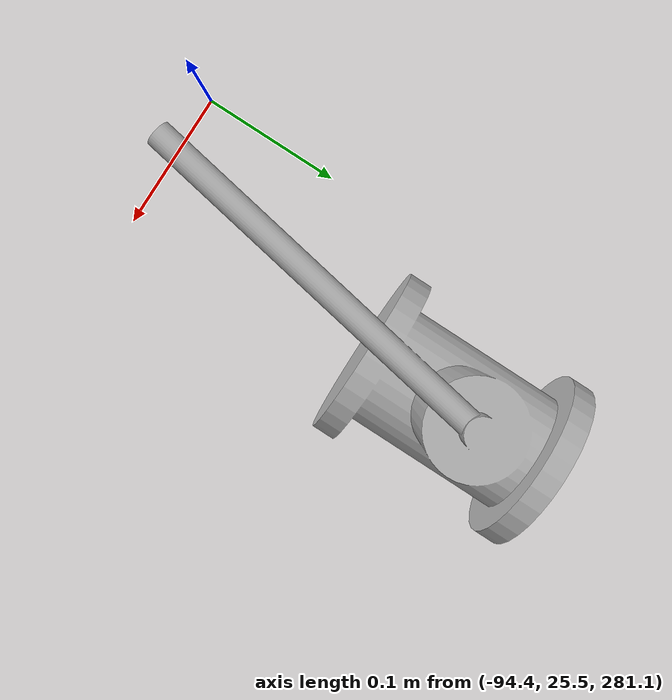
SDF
<?xml version='1.0'?>
<sdf version='1.7'>
    <model name='huldra-mini'>
        <static>true</static>
        <link name='link0'>
            <visual name="visual0">
                <pose>0 0 0 0 0 0</pose>
                <geometry>
                    <mesh>
                        <uri>model://huldra-models/huldra-mini/meshes/huldra-mini.obj</uri>
                    </mesh>
                </geometry>
                <cast_shadows>0</cast_shadows>
            </visual>
        </link>
    </model>
</sdf>
